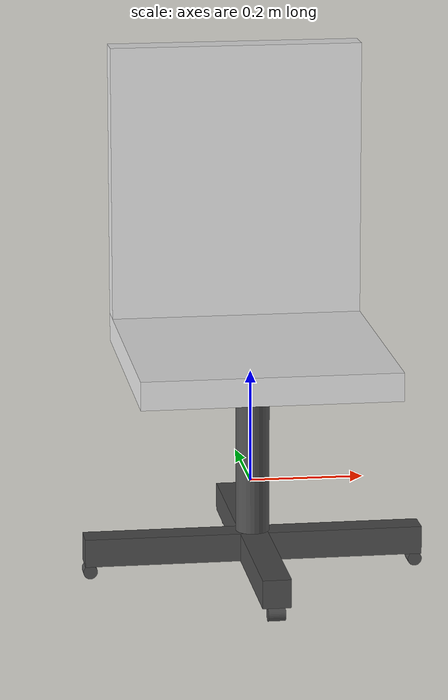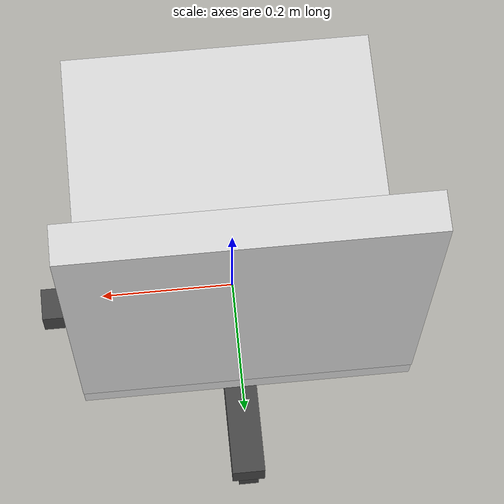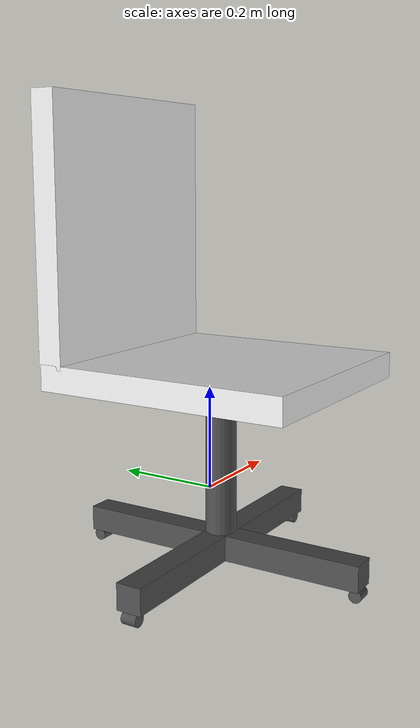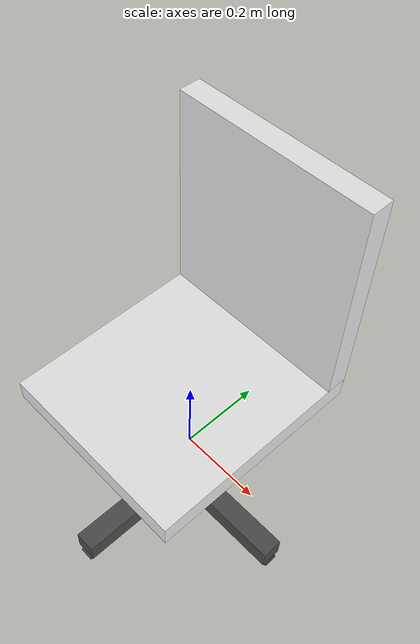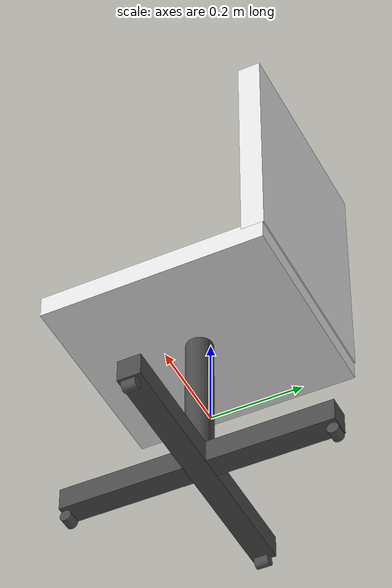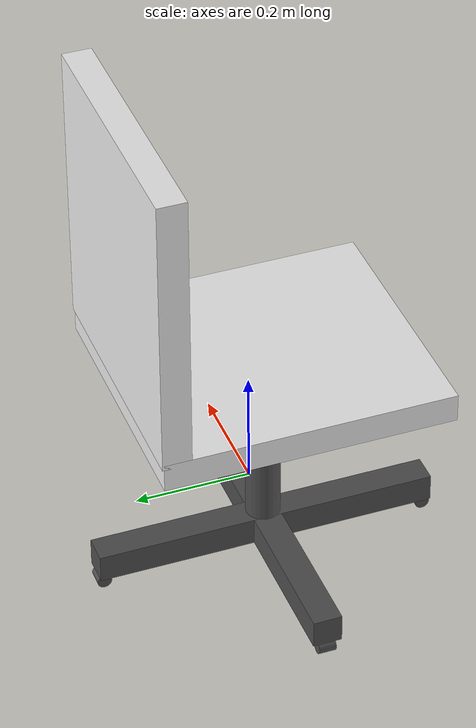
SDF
<?xml version='1.0'?>
<sdf version='1.7'>
  <model name='test_chair'>
    <link name='link_3'>
      <inertial>
        <mass>1</mass>
        <inertia>
          <ixx>0.166667</ixx>
          <ixy>0</ixy>
          <ixz>0</ixz>
          <iyy>0.166667</iyy>
          <iyz>0</iyz>
          <izz>0.166667</izz>
        </inertia>
        <pose>0 0 0 0 -0 0</pose>
      </inertial>
      <pose>0 -0.025312 -0.108342 0 -0 0</pose>
      <gravity>1</gravity>
      <self_collide>0</self_collide>
      <kinematic>0</kinematic>
      <enable_wind>0</enable_wind>
      <visual name='visual'>
        <pose>0 0 0 0 -0 0</pose>
        <geometry>
          <box>
            <size>0.6 0.05 0.05</size>
          </box>
        </geometry>
        <material>
          <lighting>1</lighting>
          <script>
            <uri>file://media/materials/scripts/gazebo.material</uri>
            <name>Gazebo/DarkGrey</name>
          </script>
          <shader type='pixel'>
            <normal_map>__default__</normal_map>
          </shader>
          <ambient>0.175 0.175 0.175 1</ambient>
          <diffuse>0.175 0.175 0.175 1</diffuse>
          <specular>0.175 0.175 0.175 1</specular>
          <emissive>0 0 0 1</emissive>
        </material>
        <transparency>0</transparency>
        <cast_shadows>1</cast_shadows>
      </visual>
      <collision name='collision_2'>
        <laser_retro>0</laser_retro>
        <max_contacts>10</max_contacts>
        <pose>0 0 0 0 -0 0</pose>
        <geometry>
          <box>
            <size>0.6 0.05 0.05</size>
          </box>
        </geometry>
        <surface>
          <friction>
            <ode>
              <mu>1</mu>
              <mu2>1</mu2>
              <fdir1>0 0 0</fdir1>
              <slip1>0</slip1>
              <slip2>0</slip2>
            </ode>
            <torsional>
              <coefficient>1</coefficient>
              <patch_radius>0</patch_radius>
              <surface_radius>0</surface_radius>
              <use_patch_radius>1</use_patch_radius>
              <ode>
                <slip>0</slip>
              </ode>
            </torsional>
          </friction>
          <bounce>
            <restitution_coefficient>0</restitution_coefficient>
            <threshold>1e+06</threshold>
          </bounce>
          <contact>
            <collide_without_contact>0</collide_without_contact>
            <collide_without_contact_bitmask>1</collide_without_contact_bitmask>
            <collide_bitmask>1</collide_bitmask>
            <ode>
              <soft_cfm>0</soft_cfm>
              <soft_erp>0.2</soft_erp>
              <kp>1e+13</kp>
              <kd>1</kd>
              <max_vel>0.01</max_vel>
              <min_depth>0</min_depth>
            </ode>
            <bullet>
              <split_impulse>1</split_impulse>
              <split_impulse_penetration_threshold>-0.01</split_impulse_penetration_threshold>
              <soft_cfm>0</soft_cfm>
              <soft_erp>0.2</soft_erp>
              <kp>1e+13</kp>
              <kd>1</kd>
            </bullet>
          </contact>
        </surface>
      </collision>
    </link>
    <link name='link_3_clone'>
      <inertial>
        <mass>1</mass>
        <inertia>
          <ixx>0.166667</ixx>
          <ixy>0</ixy>
          <ixz>0</ixz>
          <iyy>0.166667</iyy>
          <iyz>0</iyz>
          <izz>0.166667</izz>
        </inertia>
        <pose>0 0 0 0 -0 0</pose>
      </inertial>
      <pose>0 -0.025312 -0.108342 0 -0 1.5708</pose>
      <gravity>1</gravity>
      <self_collide>0</self_collide>
      <kinematic>0</kinematic>
      <enable_wind>0</enable_wind>
      <visual name='visual'>
        <pose>0 0 0 0 -0 0</pose>
        <geometry>
          <box>
            <size>0.6 0.05 0.05</size>
          </box>
        </geometry>
        <material>
          <lighting>1</lighting>
          <script>
            <uri>file://media/materials/scripts/gazebo.material</uri>
            <name>Gazebo/DarkGrey</name>
          </script>
          <shader type='pixel'>
            <normal_map>__default__</normal_map>
          </shader>
          <ambient>0.175 0.175 0.175 1</ambient>
          <diffuse>0.175 0.175 0.175 1</diffuse>
          <specular>0.175 0.175 0.175 1</specular>
          <emissive>0 0 0 1</emissive>
        </material>
        <transparency>0</transparency>
        <cast_shadows>1</cast_shadows>
      </visual>
      <collision name='collision_2'>
        <laser_retro>0</laser_retro>
        <max_contacts>10</max_contacts>
        <pose>0 0 0 0 -0 0</pose>
        <geometry>
          <box>
            <size>0.6 0.05 0.05</size>
          </box>
        </geometry>
        <surface>
          <friction>
            <ode>
              <mu>1</mu>
              <mu2>1</mu2>
              <fdir1>0 0 0</fdir1>
              <slip1>0</slip1>
              <slip2>0</slip2>
            </ode>
            <torsional>
              <coefficient>1</coefficient>
              <patch_radius>0</patch_radius>
              <surface_radius>0</surface_radius>
              <use_patch_radius>1</use_patch_radius>
              <ode>
                <slip>0</slip>
              </ode>
            </torsional>
          </friction>
          <bounce>
            <restitution_coefficient>0</restitution_coefficient>
            <threshold>1e+06</threshold>
          </bounce>
          <contact>
            <collide_without_contact>0</collide_without_contact>
            <collide_without_contact_bitmask>1</collide_without_contact_bitmask>
            <collide_bitmask>1</collide_bitmask>
            <ode>
              <soft_cfm>0</soft_cfm>
              <soft_erp>0.2</soft_erp>
              <kp>1e+13</kp>
              <kd>1</kd>
              <max_vel>0.01</max_vel>
              <min_depth>0</min_depth>
            </ode>
            <bullet>
              <split_impulse>1</split_impulse>
              <split_impulse_penetration_threshold>-0.01</split_impulse_penetration_threshold>
              <soft_cfm>0</soft_cfm>
              <soft_erp>0.2</soft_erp>
              <kp>1e+13</kp>
              <kd>1</kd>
            </bullet>
          </contact>
        </surface>
      </collision>
    </link>
    <link name='link_4'>
      <inertial>
        <mass>1</mass>
        <inertia>
          <ixx>0.145833</ixx>
          <ixy>0</ixy>
          <ixz>0</ixz>
          <iyy>0.145833</iyy>
          <iyz>0</iyz>
          <izz>0.125</izz>
        </inertia>
        <pose>0 0 0 0 -0 0</pose>
      </inertial>
      <pose>0 0.264688 -0.145842 3.14159 -1.57079 3.14159</pose>
      <gravity>1</gravity>
      <self_collide>0</self_collide>
      <kinematic>0</kinematic>
      <enable_wind>0</enable_wind>
      <visual name='visual'>
        <pose>0 0 0 0 -0 0</pose>
        <geometry>
          <cylinder>
            <radius>0.0125</radius>
            <length>0.03</length>
          </cylinder>
        </geometry>
        <material>
          <lighting>1</lighting>
          <script>
            <uri>file://media/materials/scripts/gazebo.material</uri>
            <name>Gazebo/DarkGrey</name>
          </script>
          <shader type='pixel'>
            <normal_map>__default__</normal_map>
          </shader>
          <ambient>0.3 0.3 0.3 1</ambient>
          <diffuse>0.7 0.7 0.7 1</diffuse>
          <specular>0.01 0.01 0.01 1</specular>
          <emissive>0 0 0 1</emissive>
        </material>
        <transparency>0</transparency>
        <cast_shadows>1</cast_shadows>
      </visual>
      <collision name='collision_2'>
        <laser_retro>0</laser_retro>
        <max_contacts>10</max_contacts>
        <pose>0 0 0 0 -0 0</pose>
        <geometry>
          <cylinder>
            <radius>0.0125</radius>
            <length>0.03</length>
          </cylinder>
        </geometry>
        <surface>
          <friction>
            <ode>
              <mu>1</mu>
              <mu2>1</mu2>
              <fdir1>0 0 0</fdir1>
              <slip1>0</slip1>
              <slip2>0</slip2>
            </ode>
            <torsional>
              <coefficient>1</coefficient>
              <patch_radius>0</patch_radius>
              <surface_radius>0</surface_radius>
              <use_patch_radius>1</use_patch_radius>
              <ode>
                <slip>0</slip>
              </ode>
            </torsional>
          </friction>
          <bounce>
            <restitution_coefficient>0</restitution_coefficient>
            <threshold>1e+06</threshold>
          </bounce>
          <contact>
            <collide_without_contact>0</collide_without_contact>
            <collide_without_contact_bitmask>1</collide_without_contact_bitmask>
            <collide_bitmask>1</collide_bitmask>
            <ode>
              <soft_cfm>0</soft_cfm>
              <soft_erp>0.2</soft_erp>
              <kp>1e+13</kp>
              <kd>1</kd>
              <max_vel>0.01</max_vel>
              <min_depth>0</min_depth>
            </ode>
            <bullet>
              <split_impulse>1</split_impulse>
              <split_impulse_penetration_threshold>-0.01</split_impulse_penetration_threshold>
              <soft_cfm>0</soft_cfm>
              <soft_erp>0.2</soft_erp>
              <kp>1e+13</kp>
              <kd>1</kd>
            </bullet>
          </contact>
        </surface>
      </collision>
    </link>
    <link name='link_4_clone'>
      <inertial>
        <mass>1</mass>
        <inertia>
          <ixx>0.145833</ixx>
          <ixy>0</ixy>
          <ixz>0</ixz>
          <iyy>0.145833</iyy>
          <iyz>0</iyz>
          <izz>0.125</izz>
        </inertia>
        <pose>0 0 0 0 -0 0</pose>
      </inertial>
      <pose>0 -0.315312 -0.145842 -3.14159 -1.57079 -3.14159</pose>
      <gravity>1</gravity>
      <self_collide>0</self_collide>
      <kinematic>0</kinematic>
      <enable_wind>0</enable_wind>
      <visual name='visual'>
        <pose>0 0 0 0 -0 0</pose>
        <geometry>
          <cylinder>
            <radius>0.0125</radius>
            <length>0.03</length>
          </cylinder>
        </geometry>
        <material>
          <lighting>1</lighting>
          <script>
            <uri>file://media/materials/scripts/gazebo.material</uri>
            <name>Gazebo/DarkGrey</name>
          </script>
          <shader type='pixel'>
            <normal_map>__default__</normal_map>
          </shader>
          <ambient>0.3 0.3 0.3 1</ambient>
          <diffuse>0.7 0.7 0.7 1</diffuse>
          <specular>0.01 0.01 0.01 1</specular>
          <emissive>0 0 0 1</emissive>
        </material>
        <transparency>0</transparency>
        <cast_shadows>1</cast_shadows>
      </visual>
      <collision name='collision_2'>
        <laser_retro>0</laser_retro>
        <max_contacts>10</max_contacts>
        <pose>0 0 0 0 -0 0</pose>
        <geometry>
          <cylinder>
            <radius>0.0125</radius>
            <length>0.03</length>
          </cylinder>
        </geometry>
        <surface>
          <friction>
            <ode>
              <mu>1</mu>
              <mu2>1</mu2>
              <fdir1>0 0 0</fdir1>
              <slip1>0</slip1>
              <slip2>0</slip2>
            </ode>
            <torsional>
              <coefficient>1</coefficient>
              <patch_radius>0</patch_radius>
              <surface_radius>0</surface_radius>
              <use_patch_radius>1</use_patch_radius>
              <ode>
                <slip>0</slip>
              </ode>
            </torsional>
          </friction>
          <bounce>
            <restitution_coefficient>0</restitution_coefficient>
            <threshold>1e+06</threshold>
          </bounce>
          <contact>
            <collide_without_contact>0</collide_without_contact>
            <collide_without_contact_bitmask>1</collide_without_contact_bitmask>
            <collide_bitmask>1</collide_bitmask>
            <ode>
              <soft_cfm>0</soft_cfm>
              <soft_erp>0.2</soft_erp>
              <kp>1e+13</kp>
              <kd>1</kd>
              <max_vel>0.01</max_vel>
              <min_depth>0</min_depth>
            </ode>
            <bullet>
              <split_impulse>1</split_impulse>
              <split_impulse_penetration_threshold>-0.01</split_impulse_penetration_threshold>
              <soft_cfm>0</soft_cfm>
              <soft_erp>0.2</soft_erp>
              <kp>1e+13</kp>
              <kd>1</kd>
            </bullet>
          </contact>
        </surface>
      </collision>
    </link>
    <link name='link_4_clone_clone'>
      <inertial>
        <mass>1</mass>
        <inertia>
          <ixx>0.145833</ixx>
          <ixy>0</ixy>
          <ixz>0</ixz>
          <iyy>0.145833</iyy>
          <iyz>0</iyz>
          <izz>0.125</izz>
        </inertia>
        <pose>0 0 0 0 -0 0</pose>
      </inertial>
      <pose>0.29 -0.025312 -0.145842 -1.5708 0 0</pose>
      <gravity>1</gravity>
      <self_collide>0</self_collide>
      <kinematic>0</kinematic>
      <enable_wind>0</enable_wind>
      <visual name='visual'>
        <pose>0 0 0 0 -0 0</pose>
        <geometry>
          <cylinder>
            <radius>0.0125</radius>
            <length>0.03</length>
          </cylinder>
        </geometry>
        <material>
          <lighting>1</lighting>
          <script>
            <uri>file://media/materials/scripts/gazebo.material</uri>
            <name>Gazebo/DarkGrey</name>
          </script>
          <shader type='pixel'>
            <normal_map>__default__</normal_map>
          </shader>
          <ambient>0.3 0.3 0.3 1</ambient>
          <diffuse>0.7 0.7 0.7 1</diffuse>
          <specular>0.01 0.01 0.01 1</specular>
          <emissive>0 0 0 1</emissive>
        </material>
        <transparency>0</transparency>
        <cast_shadows>1</cast_shadows>
      </visual>
      <collision name='collision_2'>
        <laser_retro>0</laser_retro>
        <max_contacts>10</max_contacts>
        <pose>0 0 0 0 -0 0</pose>
        <geometry>
          <cylinder>
            <radius>0.0125</radius>
            <length>0.03</length>
          </cylinder>
        </geometry>
        <surface>
          <friction>
            <ode>
              <mu>1</mu>
              <mu2>1</mu2>
              <fdir1>0 0 0</fdir1>
              <slip1>0</slip1>
              <slip2>0</slip2>
            </ode>
            <torsional>
              <coefficient>1</coefficient>
              <patch_radius>0</patch_radius>
              <surface_radius>0</surface_radius>
              <use_patch_radius>1</use_patch_radius>
              <ode>
                <slip>0</slip>
              </ode>
            </torsional>
          </friction>
          <bounce>
            <restitution_coefficient>0</restitution_coefficient>
            <threshold>1e+06</threshold>
          </bounce>
          <contact>
            <collide_without_contact>0</collide_without_contact>
            <collide_without_contact_bitmask>1</collide_without_contact_bitmask>
            <collide_bitmask>1</collide_bitmask>
            <ode>
              <soft_cfm>0</soft_cfm>
              <soft_erp>0.2</soft_erp>
              <kp>1e+13</kp>
              <kd>1</kd>
              <max_vel>0.01</max_vel>
              <min_depth>0</min_depth>
            </ode>
            <bullet>
              <split_impulse>1</split_impulse>
              <split_impulse_penetration_threshold>-0.01</split_impulse_penetration_threshold>
              <soft_cfm>0</soft_cfm>
              <soft_erp>0.2</soft_erp>
              <kp>1e+13</kp>
              <kd>1</kd>
            </bullet>
          </contact>
        </surface>
      </collision>
    </link>
    <link name='link_4_clone_clone_clone'>
      <inertial>
        <mass>1</mass>
        <inertia>
          <ixx>0.145833</ixx>
          <ixy>0</ixy>
          <ixz>0</ixz>
          <iyy>0.145833</iyy>
          <iyz>0</iyz>
          <izz>0.125</izz>
        </inertia>
        <pose>0 0 0 0 -0 0</pose>
      </inertial>
      <pose>-0.29 -0.025312 -0.145842 -1.5708 0 0</pose>
      <gravity>1</gravity>
      <self_collide>0</self_collide>
      <kinematic>0</kinematic>
      <enable_wind>0</enable_wind>
      <visual name='visual'>
        <pose>0 0 0 0 -0 0</pose>
        <geometry>
          <cylinder>
            <radius>0.0125</radius>
            <length>0.03</length>
          </cylinder>
        </geometry>
        <material>
          <lighting>1</lighting>
          <script>
            <uri>file://media/materials/scripts/gazebo.material</uri>
            <name>Gazebo/DarkGrey</name>
          </script>
          <shader type='pixel'>
            <normal_map>__default__</normal_map>
          </shader>
          <ambient>0.3 0.3 0.3 1</ambient>
          <diffuse>0.7 0.7 0.7 1</diffuse>
          <specular>0.01 0.01 0.01 1</specular>
          <emissive>0 0 0 1</emissive>
        </material>
        <transparency>0</transparency>
        <cast_shadows>1</cast_shadows>
      </visual>
      <collision name='collision_2'>
        <laser_retro>0</laser_retro>
        <max_contacts>10</max_contacts>
        <pose>0 0 0 0 -0 0</pose>
        <geometry>
          <cylinder>
            <radius>0.0125</radius>
            <length>0.03</length>
          </cylinder>
        </geometry>
        <surface>
          <friction>
            <ode>
              <mu>1</mu>
              <mu2>1</mu2>
              <fdir1>0 0 0</fdir1>
              <slip1>0</slip1>
              <slip2>0</slip2>
            </ode>
            <torsional>
              <coefficient>1</coefficient>
              <patch_radius>0</patch_radius>
              <surface_radius>0</surface_radius>
              <use_patch_radius>1</use_patch_radius>
              <ode>
                <slip>0</slip>
              </ode>
            </torsional>
          </friction>
          <bounce>
            <restitution_coefficient>0</restitution_coefficient>
            <threshold>1e+06</threshold>
          </bounce>
          <contact>
            <collide_without_contact>0</collide_without_contact>
            <collide_without_contact_bitmask>1</collide_without_contact_bitmask>
            <collide_bitmask>1</collide_bitmask>
            <ode>
              <soft_cfm>0</soft_cfm>
              <soft_erp>0.2</soft_erp>
              <kp>1e+13</kp>
              <kd>1</kd>
              <max_vel>0.01</max_vel>
              <min_depth>0</min_depth>
            </ode>
            <bullet>
              <split_impulse>1</split_impulse>
              <split_impulse_penetration_threshold>-0.01</split_impulse_penetration_threshold>
              <soft_cfm>0</soft_cfm>
              <soft_erp>0.2</soft_erp>
              <kp>1e+13</kp>
              <kd>1</kd>
            </bullet>
          </contact>
        </surface>
      </collision>
    </link>
    <link name='link_5'>
      <inertial>
        <mass>1</mass>
        <inertia>
          <ixx>0.145833</ixx>
          <ixy>0</ixy>
          <ixz>0</ixz>
          <iyy>0.145833</iyy>
          <iyz>0</iyz>
          <izz>0.125</izz>
        </inertia>
        <pose>0 0 0 0 -0 0</pose>
      </inertial>
      <pose>0 -0.025312 0.066658 0 -0 0</pose>
      <gravity>1</gravity>
      <self_collide>0</self_collide>
      <kinematic>0</kinematic>
      <enable_wind>0</enable_wind>
      <visual name='visual'>
        <pose>0 0 0 0 -0 0</pose>
        <geometry>
          <cylinder>
            <radius>0.03</radius>
            <length>0.3</length>
          </cylinder>
        </geometry>
        <material>
          <lighting>1</lighting>
          <script>
            <uri>file://media/materials/scripts/gazebo.material</uri>
            <name>Gazebo/DarkGrey</name>
          </script>
          <shader type='pixel'>
            <normal_map>__default__</normal_map>
          </shader>
          <ambient>0.3 0.3 0.3 1</ambient>
          <diffuse>0.7 0.7 0.7 1</diffuse>
          <specular>0.01 0.01 0.01 1</specular>
          <emissive>0 0 0 1</emissive>
        </material>
        <transparency>0</transparency>
        <cast_shadows>1</cast_shadows>
      </visual>
      <collision name='collision_1'>
        <laser_retro>0</laser_retro>
        <max_contacts>10</max_contacts>
        <pose>0 0 0 0 -0 0</pose>
        <geometry>
          <cylinder>
            <radius>0.03</radius>
            <length>0.3</length>
          </cylinder>
        </geometry>
        <surface>
          <friction>
            <ode>
              <mu>1</mu>
              <mu2>1</mu2>
              <fdir1>0 0 0</fdir1>
              <slip1>0</slip1>
              <slip2>0</slip2>
            </ode>
            <torsional>
              <coefficient>1</coefficient>
              <patch_radius>0</patch_radius>
              <surface_radius>0</surface_radius>
              <use_patch_radius>1</use_patch_radius>
              <ode>
                <slip>0</slip>
              </ode>
            </torsional>
          </friction>
          <bounce>
            <restitution_coefficient>0</restitution_coefficient>
            <threshold>1e+06</threshold>
          </bounce>
          <contact>
            <collide_without_contact>0</collide_without_contact>
            <collide_without_contact_bitmask>1</collide_without_contact_bitmask>
            <collide_bitmask>1</collide_bitmask>
            <ode>
              <soft_cfm>0</soft_cfm>
              <soft_erp>0.2</soft_erp>
              <kp>1e+13</kp>
              <kd>1</kd>
              <max_vel>0.01</max_vel>
              <min_depth>0</min_depth>
            </ode>
            <bullet>
              <split_impulse>1</split_impulse>
              <split_impulse_penetration_threshold>-0.01</split_impulse_penetration_threshold>
              <soft_cfm>0</soft_cfm>
              <soft_erp>0.2</soft_erp>
              <kp>1e+13</kp>
              <kd>1</kd>
            </bullet>
          </contact>
        </surface>
      </collision>
    </link>
    <link name='link_6'>
      <inertial>
        <mass>1</mass>
        <inertia>
          <ixx>0.166667</ixx>
          <ixy>0</ixy>
          <ixz>0</ixz>
          <iyy>0.166667</iyy>
          <iyz>0</iyz>
          <izz>0.166667</izz>
        </inertia>
        <pose>0 0 0 0 -0 0</pose>
      </inertial>
      <pose>0 -0.025312 0.233624 0 -0 0</pose>
      <gravity>1</gravity>
      <self_collide>0</self_collide>
      <kinematic>0</kinematic>
      <enable_wind>0</enable_wind>
      <visual name='visual'>
        <pose>0 0 0 0 -0 0</pose>
        <geometry>
          <box>
            <size>0.45 0.5 0.05</size>
          </box>
        </geometry>
        <material>
          <lighting>1</lighting>
          <script>
            <uri>file://media/materials/scripts/gazebo.material</uri>
            <name>Gazebo/White</name>
          </script>
          <shader type='pixel'>
            <normal_map>__default__</normal_map>
          </shader>
          <ambient>0.3 0.3 0.3 1</ambient>
          <diffuse>0.7 0.7 0.7 1</diffuse>
          <specular>0.01 0.01 0.01 1</specular>
          <emissive>0 0 0 1</emissive>
        </material>
        <transparency>0</transparency>
        <cast_shadows>1</cast_shadows>
      </visual>
      <collision name='collision_1'>
        <laser_retro>0</laser_retro>
        <max_contacts>10</max_contacts>
        <pose>0 0 0 0 -0 0</pose>
        <geometry>
          <box>
            <size>0.45 0.5 0.05</size>
          </box>
        </geometry>
        <surface>
          <friction>
            <ode>
              <mu>1</mu>
              <mu2>1</mu2>
              <fdir1>0 0 0</fdir1>
              <slip1>0</slip1>
              <slip2>0</slip2>
            </ode>
            <torsional>
              <coefficient>1</coefficient>
              <patch_radius>0</patch_radius>
              <surface_radius>0</surface_radius>
              <use_patch_radius>1</use_patch_radius>
              <ode>
                <slip>0</slip>
              </ode>
            </torsional>
          </friction>
          <bounce>
            <restitution_coefficient>0</restitution_coefficient>
            <threshold>1e+06</threshold>
          </bounce>
          <contact>
            <collide_without_contact>0</collide_without_contact>
            <collide_without_contact_bitmask>1</collide_without_contact_bitmask>
            <collide_bitmask>1</collide_bitmask>
            <ode>
              <soft_cfm>0</soft_cfm>
              <soft_erp>0.2</soft_erp>
              <kp>1e+13</kp>
              <kd>1</kd>
              <max_vel>0.01</max_vel>
              <min_depth>0</min_depth>
            </ode>
            <bullet>
              <split_impulse>1</split_impulse>
              <split_impulse_penetration_threshold>-0.01</split_impulse_penetration_threshold>
              <soft_cfm>0</soft_cfm>
              <soft_erp>0.2</soft_erp>
              <kp>1e+13</kp>
              <kd>1</kd>
            </bullet>
          </contact>
        </surface>
      </collision>
    </link>
    <link name='link_6_clone'>
      <inertial>
        <mass>1</mass>
        <inertia>
          <ixx>0.166667</ixx>
          <ixy>0</ixy>
          <ixz>0</ixz>
          <iyy>0.166667</iyy>
          <iyz>0</iyz>
          <izz>0.166667</izz>
        </inertia>
        <pose>0 0 0 0 -0 0</pose>
      </inertial>
      <pose>0 0.202493 0.49977 -1.5708 0 0</pose>
      <gravity>1</gravity>
      <self_collide>0</self_collide>
      <kinematic>0</kinematic>
      <enable_wind>0</enable_wind>
      <visual name='visual'>
        <pose>0 0 0 0 -0 0</pose>
        <geometry>
          <box>
            <size>0.45 0.5 0.05</size>
          </box>
        </geometry>
        <material>
          <lighting>1</lighting>
          <script>
            <uri>file://media/materials/scripts/gazebo.material</uri>
            <name>Gazebo/White</name>
          </script>
          <shader type='pixel'>
            <normal_map>__default__</normal_map>
          </shader>
          <ambient>0.3 0.3 0.3 1</ambient>
          <diffuse>0.7 0.7 0.7 1</diffuse>
          <specular>0.01 0.01 0.01 1</specular>
          <emissive>0 0 0 1</emissive>
        </material>
        <transparency>0</transparency>
        <cast_shadows>1</cast_shadows>
      </visual>
      <collision name='collision_1'>
        <laser_retro>0</laser_retro>
        <max_contacts>10</max_contacts>
        <pose>0 0 0 0 -0 0</pose>
        <geometry>
          <box>
            <size>0.45 0.5 0.05</size>
          </box>
        </geometry>
        <surface>
          <friction>
            <ode>
              <mu>1</mu>
              <mu2>1</mu2>
              <fdir1>0 0 0</fdir1>
              <slip1>0</slip1>
              <slip2>0</slip2>
            </ode>
            <torsional>
              <coefficient>1</coefficient>
              <patch_radius>0</patch_radius>
              <surface_radius>0</surface_radius>
              <use_patch_radius>1</use_patch_radius>
              <ode>
                <slip>0</slip>
              </ode>
            </torsional>
          </friction>
          <bounce>
            <restitution_coefficient>0</restitution_coefficient>
            <threshold>1e+06</threshold>
          </bounce>
          <contact>
            <collide_without_contact>0</collide_without_contact>
            <collide_without_contact_bitmask>1</collide_without_contact_bitmask>
            <collide_bitmask>1</collide_bitmask>
            <ode>
              <soft_cfm>0</soft_cfm>
              <soft_erp>0.2</soft_erp>
              <kp>1e+13</kp>
              <kd>1</kd>
              <max_vel>0.01</max_vel>
              <min_depth>0</min_depth>
            </ode>
            <bullet>
              <split_impulse>1</split_impulse>
              <split_impulse_penetration_threshold>-0.01</split_impulse_penetration_threshold>
              <soft_cfm>0</soft_cfm>
              <soft_erp>0.2</soft_erp>
              <kp>1e+13</kp>
              <kd>1</kd>
            </bullet>
          </contact>
        </surface>
      </collision>
    </link>
    <static>0</static>
    <allow_auto_disable>1</allow_auto_disable>
  </model>
</sdf>
